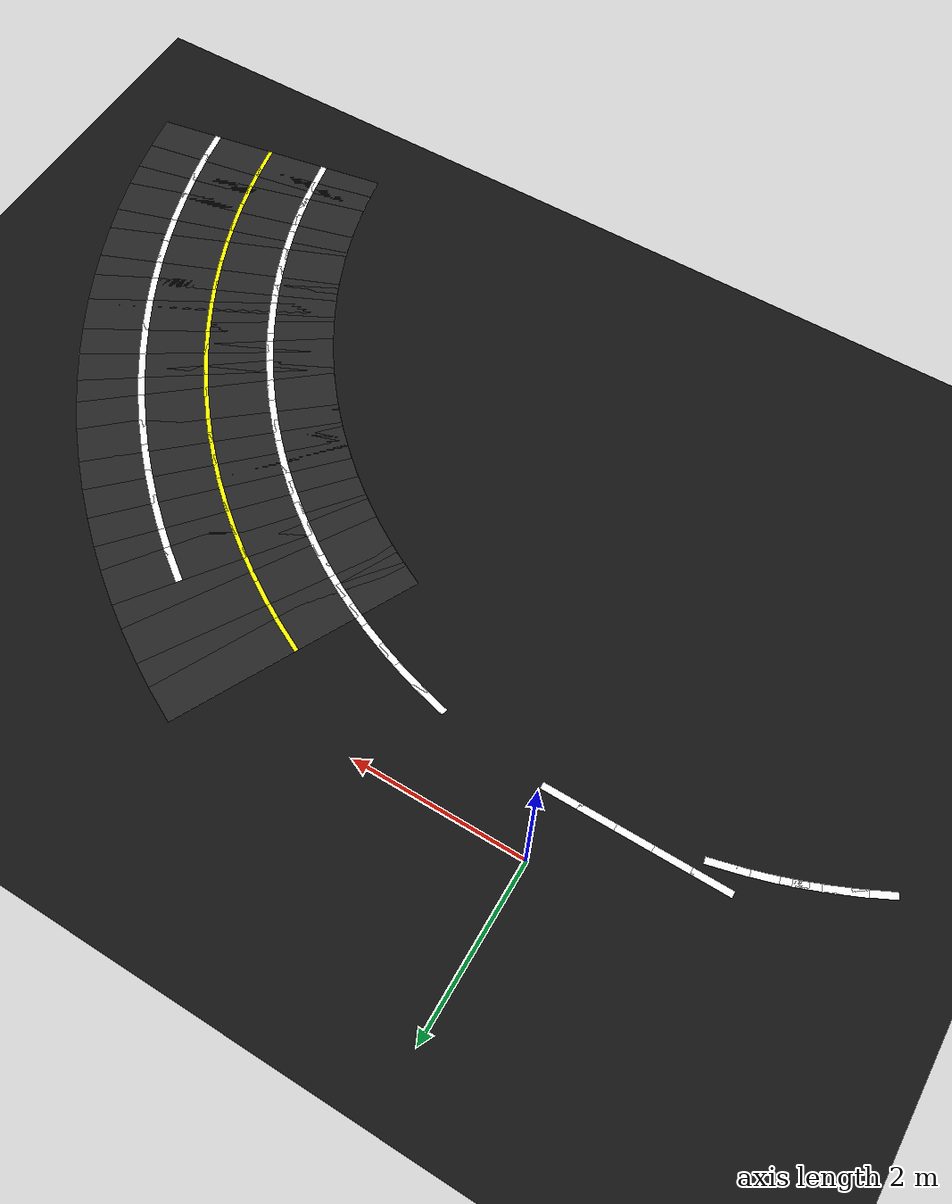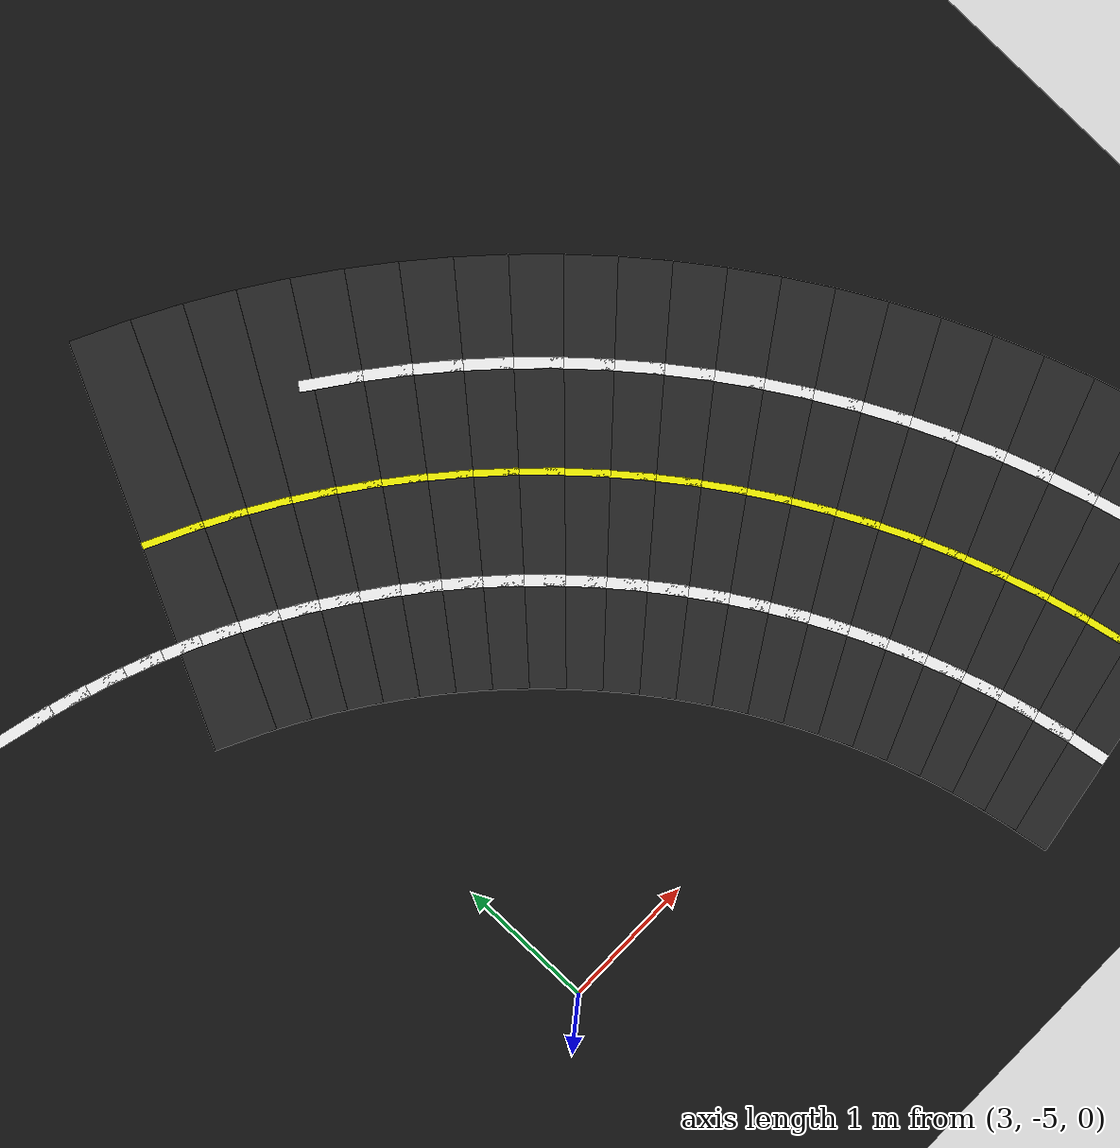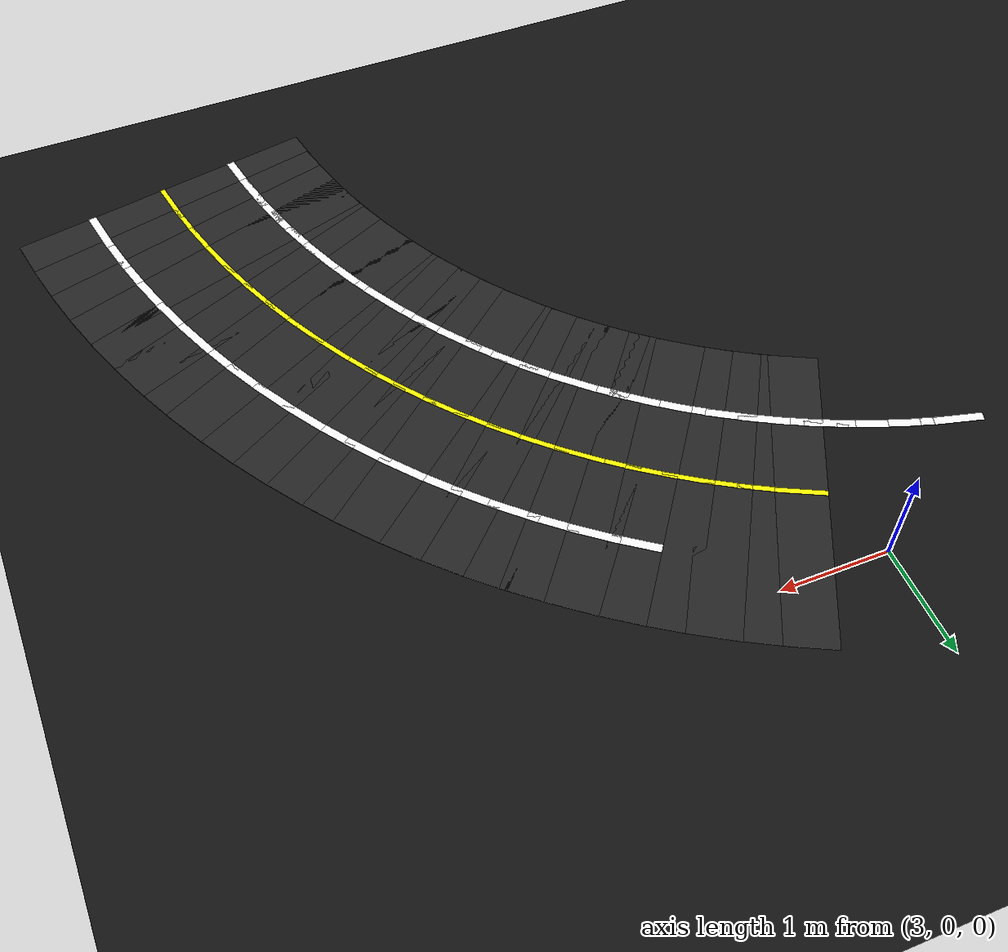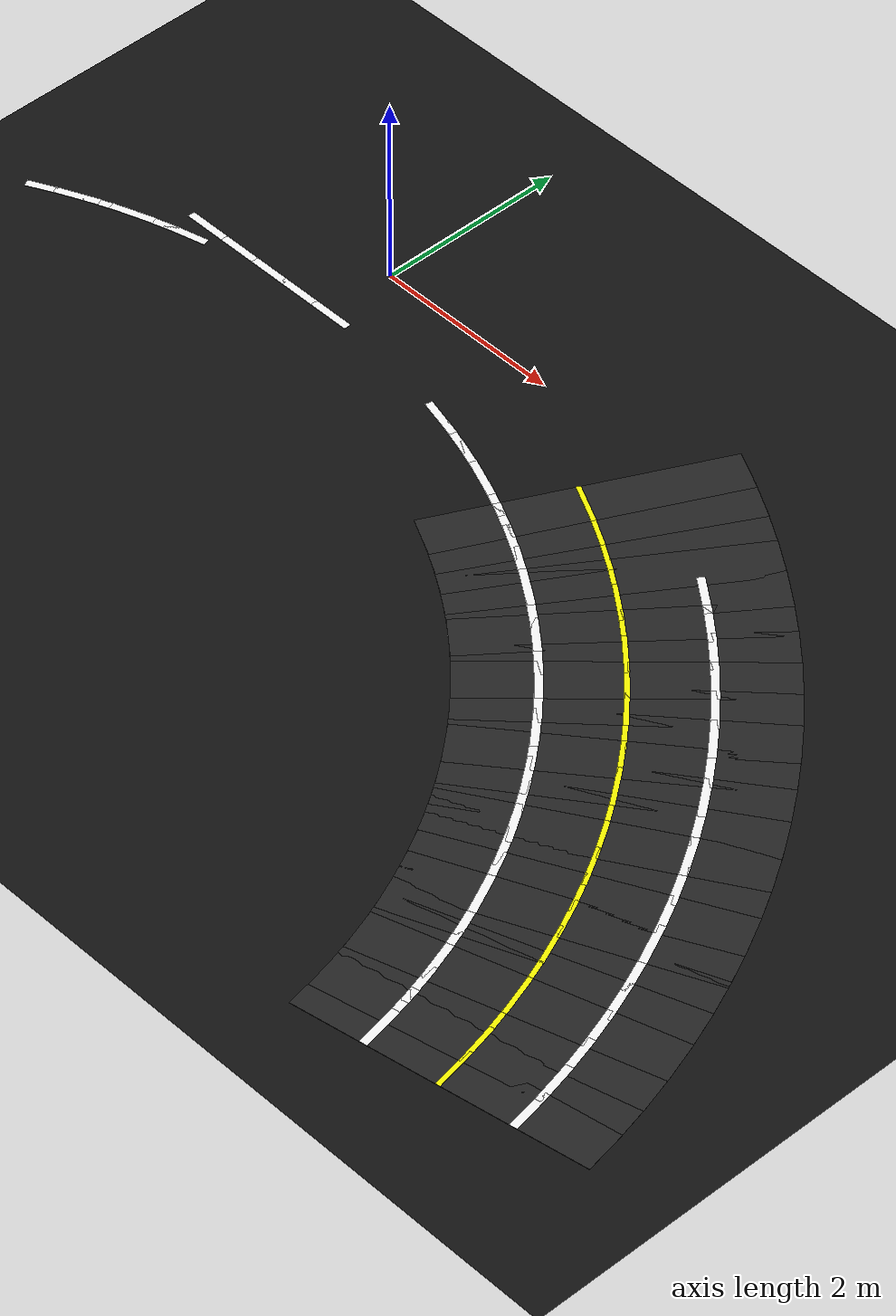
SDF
<sdf version="1.6">
 <world name="figure8_world">
  <model name="ground_plane">
   <static>true</static>
   <link name="link">
    <collision name="collision">
     <geometry><plane><normal>0 0 1</normal><size>100 100</size></plane></geometry>
    </collision>
    <visual name="visual">
     <geometry><plane><normal>0 0 1</normal><size>100 100</size></plane></geometry>
     <material><ambient>0.08 0.08 0.08 1</ambient><diffuse>0.08 0.08 0.08 1</diffuse></material>
    </visual>
   </link>
  </model>
  <model name="seg_00554">
   <static>true</static>
   <pose>1.6897 -0.9649 0.0030 0 0 -0.2530</pose>
   <link name="link">
    <collision name="collision"><geometry><box><size>0.4500 0.0800 0.002</size></box></geometry></collision>
    <visual name="visual">
     <geometry><box><size>0.4500 0.0800 0.002</size></box></geometry>
     <material><ambient>1 1 1 1</ambient><diffuse>1 1 1 1</diffuse></material>
    </visual>
   </link>
  </model>
  <model name="seg_00558">
   <static>true</static>
   <pose>1.9637 -1.0419 0.0030 0 0 -0.2952</pose>
   <link name="link">
    <collision name="collision"><geometry><box><size>0.4500 0.0800 0.002</size></box></geometry></collision>
    <visual name="visual">
     <geometry><box><size>0.4500 0.0800 0.002</size></box></geometry>
     <material><ambient>1 1 1 1</ambient><diffuse>1 1 1 1</diffuse></material>
    </visual>
   </link>
  </model>
  <model name="seg_00562">
   <static>true</static>
   <pose>2.2342 -1.1305 0.0030 0 0 -0.3374</pose>
   <link name="link">
    <collision name="collision"><geometry><box><size>0.4500 0.0800 0.002</size></box></geometry></collision>
    <visual name="visual">
     <geometry><box><size>0.4500 0.0800 0.002</size></box></geometry>
     <material><ambient>1 1 1 1</ambient><diffuse>1 1 1 1</diffuse></material>
    </visual>
   </link>
  </model>
  <model name="seg_00566">
   <static>true</static>
   <pose>2.5007 -1.2303 0.0030 0 0 -0.3795</pose>
   <link name="link">
    <collision name="collision"><geometry><box><size>0.4500 0.0800 0.002</size></box></geometry></collision>
    <visual name="visual">
     <geometry><box><size>0.4500 0.0800 0.002</size></box></geometry>
     <material><ambient>1 1 1 1</ambient><diffuse>1 1 1 1</diffuse></material>
    </visual>
   </link>
  </model>
  <model name="seg_00570">
   <static>true</static>
   <pose>2.7628 -1.3413 0.0030 0 0 -0.4217</pose>
   <link name="link">
    <collision name="collision"><geometry><box><size>0.4500 0.0800 0.002</size></box></geometry></collision>
    <visual name="visual">
     <geometry><box><size>0.4500 0.0800 0.002</size></box></geometry>
     <material><ambient>1 1 1 1</ambient><diffuse>1 1 1 1</diffuse></material>
    </visual>
   </link>
  </model>
  <model name="seg_00572">
   <static>true</static>
   <pose>3.3555 -0.7925 0.0010 0 0 -0.4639</pose>
   <link name="link">
    <collision name="collision"><geometry><box><size>0.4500 3.0000 0.002</size></box></geometry></collision>
    <visual name="visual">
     <geometry><box><size>0.4500 3.0000 0.002</size></box></geometry>
     <material><ambient>0.15 0.15 0.15 1</ambient><diffuse>0.15 0.15 0.15 1</diffuse></material>
    </visual>
   </link>
  </model>
  <model name="seg_00574">
   <static>true</static>
   <pose>3.0200 -1.4633 0.0030 0 0 -0.4639</pose>
   <link name="link">
    <collision name="collision"><geometry><box><size>0.4500 0.0800 0.002</size></box></geometry></collision>
    <visual name="visual">
     <geometry><box><size>0.4500 0.0800 0.002</size></box></geometry>
     <material><ambient>1 1 1 1</ambient><diffuse>1 1 1 1</diffuse></material>
    </visual>
   </link>
  </model>
  <model name="seg_00575">
   <static>true</static>
   <pose>3.3555 -0.7925 0.0030 0 0 -0.4639</pose>
   <link name="link">
    <collision name="collision"><geometry><box><size>0.4500 0.0500 0.002</size></box></geometry></collision>
    <visual name="visual">
     <geometry><box><size>0.4500 0.0500 0.002</size></box></geometry>
     <material><ambient>1 1 0 1</ambient><diffuse>1 1 0 1</diffuse></material>
    </visual>
   </link>
  </model>
  <model name="seg_00576">
   <static>true</static>
   <pose>3.6353 -0.9399 0.0010 0 0 -0.5060</pose>
   <link name="link">
    <collision name="collision"><geometry><box><size>0.4500 3.0000 0.002</size></box></geometry></collision>
    <visual name="visual">
     <geometry><box><size>0.4500 3.0000 0.002</size></box></geometry>
     <material><ambient>0.15 0.15 0.15 1</ambient><diffuse>0.15 0.15 0.15 1</diffuse></material>
    </visual>
   </link>
  </model>
  <model name="seg_00578">
   <static>true</static>
   <pose>3.2718 -1.5959 0.0030 0 0 -0.5060</pose>
   <link name="link">
    <collision name="collision"><geometry><box><size>0.4500 0.0800 0.002</size></box></geometry></collision>
    <visual name="visual">
     <geometry><box><size>0.4500 0.0800 0.002</size></box></geometry>
     <material><ambient>1 1 1 1</ambient><diffuse>1 1 1 1</diffuse></material>
    </visual>
   </link>
  </model>
  <model name="seg_00579">
   <static>true</static>
   <pose>3.6353 -0.9399 0.0030 0 0 -0.5060</pose>
   <link name="link">
    <collision name="collision"><geometry><box><size>0.4500 0.0500 0.002</size></box></geometry></collision>
    <visual name="visual">
     <geometry><box><size>0.4500 0.0500 0.002</size></box></geometry>
     <material><ambient>1 1 0 1</ambient><diffuse>1 1 0 1</diffuse></material>
    </visual>
   </link>
  </model>
  <model name="seg_00580">
   <static>true</static>
   <pose>3.9086 -1.0990 0.0010 0 0 -0.5482</pose>
   <link name="link">
    <collision name="collision"><geometry><box><size>0.4500 3.0000 0.002</size></box></geometry></collision>
    <visual name="visual">
     <geometry><box><size>0.4500 3.0000 0.002</size></box></geometry>
     <material><ambient>0.15 0.15 0.15 1</ambient><diffuse>0.15 0.15 0.15 1</diffuse></material>
    </visual>
   </link>
  </model>
  <model name="seg_00582">
   <static>true</static>
   <pose>3.5178 -1.7391 0.0030 0 0 -0.5482</pose>
   <link name="link">
    <collision name="collision"><geometry><box><size>0.4500 0.0800 0.002</size></box></geometry></collision>
    <visual name="visual">
     <geometry><box><size>0.4500 0.0800 0.002</size></box></geometry>
     <material><ambient>1 1 1 1</ambient><diffuse>1 1 1 1</diffuse></material>
    </visual>
   </link>
  </model>
  <model name="seg_00583">
   <static>true</static>
   <pose>3.9086 -1.0990 0.0030 0 0 -0.5482</pose>
   <link name="link">
    <collision name="collision"><geometry><box><size>0.4500 0.0500 0.002</size></box></geometry></collision>
    <visual name="visual">
     <geometry><box><size>0.4500 0.0500 0.002</size></box></geometry>
     <material><ambient>1 1 0 1</ambient><diffuse>1 1 0 1</diffuse></material>
    </visual>
   </link>
  </model>
  <model name="seg_00584">
   <static>true</static>
   <pose>4.1750 -1.2695 0.0010 0 0 -0.5904</pose>
   <link name="link">
    <collision name="collision"><geometry><box><size>0.4500 3.0000 0.002</size></box></geometry></collision>
    <visual name="visual">
     <geometry><box><size>0.4500 3.0000 0.002</size></box></geometry>
     <material><ambient>0.15 0.15 0.15 1</ambient><diffuse>0.15 0.15 0.15 1</diffuse></material>
    </visual>
   </link>
  </model>
  <model name="seg_00586">
   <static>true</static>
   <pose>3.7575 -1.8925 0.0030 0 0 -0.5904</pose>
   <link name="link">
    <collision name="collision"><geometry><box><size>0.4500 0.0800 0.002</size></box></geometry></collision>
    <visual name="visual">
     <geometry><box><size>0.4500 0.0800 0.002</size></box></geometry>
     <material><ambient>1 1 1 1</ambient><diffuse>1 1 1 1</diffuse></material>
    </visual>
   </link>
  </model>
  <model name="seg_00587">
   <static>true</static>
   <pose>4.1750 -1.2695 0.0030 0 0 -0.5904</pose>
   <link name="link">
    <collision name="collision"><geometry><box><size>0.4500 0.0500 0.002</size></box></geometry></collision>
    <visual name="visual">
     <geometry><box><size>0.4500 0.0500 0.002</size></box></geometry>
     <material><ambient>1 1 0 1</ambient><diffuse>1 1 0 1</diffuse></material>
    </visual>
   </link>
  </model>
  <model name="seg_00588">
   <static>true</static>
   <pose>4.4339 -1.4510 0.0010 0 0 -0.6325</pose>
   <link name="link">
    <collision name="collision"><geometry><box><size>0.4500 3.0000 0.002</size></box></geometry></collision>
    <visual name="visual">
     <geometry><box><size>0.4500 3.0000 0.002</size></box></geometry>
     <material><ambient>0.15 0.15 0.15 1</ambient><diffuse>0.15 0.15 0.15 1</diffuse></material>
    </visual>
   </link>
  </model>
  <model name="seg_00589">
   <static>true</static>
   <pose>4.8773 -0.8461 0.0030 0 0 -0.6325</pose>
   <link name="link">
    <collision name="collision"><geometry><box><size>0.4500 0.0800 0.002</size></box></geometry></collision>
    <visual name="visual">
     <geometry><box><size>0.4500 0.0800 0.002</size></box></geometry>
     <material><ambient>1 1 1 1</ambient><diffuse>1 1 1 1</diffuse></material>
    </visual>
   </link>
  </model>
  <model name="seg_00590">
   <static>true</static>
   <pose>3.9905 -2.0559 0.0030 0 0 -0.6325</pose>
   <link name="link">
    <collision name="collision"><geometry><box><size>0.4500 0.0800 0.002</size></box></geometry></collision>
    <visual name="visual">
     <geometry><box><size>0.4500 0.0800 0.002</size></box></geometry>
     <material><ambient>1 1 1 1</ambient><diffuse>1 1 1 1</diffuse></material>
    </visual>
   </link>
  </model>
  <model name="seg_00591">
   <static>true</static>
   <pose>4.4339 -1.4510 0.0030 0 0 -0.6325</pose>
   <link name="link">
    <collision name="collision"><geometry><box><size>0.4500 0.0500 0.002</size></box></geometry></collision>
    <visual name="visual">
     <geometry><box><size>0.4500 0.0500 0.002</size></box></geometry>
     <material><ambient>1 1 0 1</ambient><diffuse>1 1 0 1</diffuse></material>
    </visual>
   </link>
  </model>
  <model name="seg_00592">
   <static>true</static>
   <pose>4.6850 -1.6433 0.0010 0 0 -0.6747</pose>
   <link name="link">
    <collision name="collision"><geometry><box><size>0.4500 3.0000 0.002</size></box></geometry></collision>
    <visual name="visual">
     <geometry><box><size>0.4500 3.0000 0.002</size></box></geometry>
     <material><ambient>0.15 0.15 0.15 1</ambient><diffuse>0.15 0.15 0.15 1</diffuse></material>
    </visual>
   </link>
  </model>
  <model name="seg_00593">
   <static>true</static>
   <pose>5.1535 -1.0576 0.0030 0 0 -0.6747</pose>
   <link name="link">
    <collision name="collision"><geometry><box><size>0.4500 0.0800 0.002</size></box></geometry></collision>
    <visual name="visual">
     <geometry><box><size>0.4500 0.0800 0.002</size></box></geometry>
     <material><ambient>1 1 1 1</ambient><diffuse>1 1 1 1</diffuse></material>
    </visual>
   </link>
  </model>
  <model name="seg_00594">
   <static>true</static>
   <pose>4.2165 -2.2290 0.0030 0 0 -0.6747</pose>
   <link name="link">
    <collision name="collision"><geometry><box><size>0.4500 0.0800 0.002</size></box></geometry></collision>
    <visual name="visual">
     <geometry><box><size>0.4500 0.0800 0.002</size></box></geometry>
     <material><ambient>1 1 1 1</ambient><diffuse>1 1 1 1</diffuse></material>
    </visual>
   </link>
  </model>
  <model name="seg_00595">
   <static>true</static>
   <pose>4.6850 -1.6433 0.0030 0 0 -0.6747</pose>
   <link name="link">
    <collision name="collision"><geometry><box><size>0.4500 0.0500 0.002</size></box></geometry></collision>
    <visual name="visual">
     <geometry><box><size>0.4500 0.0500 0.002</size></box></geometry>
     <material><ambient>1 1 0 1</ambient><diffuse>1 1 0 1</diffuse></material>
    </visual>
   </link>
  </model>
  <model name="seg_00596">
   <static>true</static>
   <pose>4.9277 -1.8460 0.0010 0 0 -0.7169</pose>
   <link name="link">
    <collision name="collision"><geometry><box><size>0.4500 3.0000 0.002</size></box></geometry></collision>
    <visual name="visual">
     <geometry><box><size>0.4500 3.0000 0.002</size></box></geometry>
     <material><ambient>0.15 0.15 0.15 1</ambient><diffuse>0.15 0.15 0.15 1</diffuse></material>
    </visual>
   </link>
  </model>
  <model name="seg_00597">
   <static>true</static>
   <pose>5.4205 -1.2806 0.0030 0 0 -0.7169</pose>
   <link name="link">
    <collision name="collision"><geometry><box><size>0.4500 0.0800 0.002</size></box></geometry></collision>
    <visual name="visual">
     <geometry><box><size>0.4500 0.0800 0.002</size></box></geometry>
     <material><ambient>1 1 1 1</ambient><diffuse>1 1 1 1</diffuse></material>
    </visual>
   </link>
  </model>
  <model name="seg_00598">
   <static>true</static>
   <pose>4.4350 -2.4114 0.0030 0 0 -0.7169</pose>
   <link name="link">
    <collision name="collision"><geometry><box><size>0.4500 0.0800 0.002</size></box></geometry></collision>
    <visual name="visual">
     <geometry><box><size>0.4500 0.0800 0.002</size></box></geometry>
     <material><ambient>1 1 1 1</ambient><diffuse>1 1 1 1</diffuse></material>
    </visual>
   </link>
  </model>
  <model name="seg_00599">
   <static>true</static>
   <pose>4.9277 -1.8460 0.0030 0 0 -0.7169</pose>
   <link name="link">
    <collision name="collision"><geometry><box><size>0.4500 0.0500 0.002</size></box></geometry></collision>
    <visual name="visual">
     <geometry><box><size>0.4500 0.0500 0.002</size></box></geometry>
     <material><ambient>1 1 0 1</ambient><diffuse>1 1 0 1</diffuse></material>
    </visual>
   </link>
  </model>
  <model name="seg_00600">
   <static>true</static>
   <pose>5.1617 -2.0588 0.0010 0 0 -0.7590</pose>
   <link name="link">
    <collision name="collision"><geometry><box><size>0.4500 3.0000 0.002</size></box></geometry></collision>
    <visual name="visual">
     <geometry><box><size>0.4500 3.0000 0.002</size></box></geometry>
     <material><ambient>0.15 0.15 0.15 1</ambient><diffuse>0.15 0.15 0.15 1</diffuse></material>
    </visual>
   </link>
  </model>
  <model name="seg_00601">
   <static>true</static>
   <pose>5.6779 -1.5147 0.0030 0 0 -0.7590</pose>
   <link name="link">
    <collision name="collision"><geometry><box><size>0.4500 0.0800 0.002</size></box></geometry></collision>
    <visual name="visual">
     <geometry><box><size>0.4500 0.0800 0.002</size></box></geometry>
     <material><ambient>1 1 1 1</ambient><diffuse>1 1 1 1</diffuse></material>
    </visual>
   </link>
  </model>
  <model name="seg_00602">
   <static>true</static>
   <pose>4.6455 -2.6029 0.0030 0 0 -0.7590</pose>
   <link name="link">
    <collision name="collision"><geometry><box><size>0.4500 0.0800 0.002</size></box></geometry></collision>
    <visual name="visual">
     <geometry><box><size>0.4500 0.0800 0.002</size></box></geometry>
     <material><ambient>1 1 1 1</ambient><diffuse>1 1 1 1</diffuse></material>
    </visual>
   </link>
  </model>
  <model name="seg_00603">
   <static>true</static>
   <pose>5.1617 -2.0588 0.0030 0 0 -0.7590</pose>
   <link name="link">
    <collision name="collision"><geometry><box><size>0.4500 0.0500 0.002</size></box></geometry></collision>
    <visual name="visual">
     <geometry><box><size>0.4500 0.0500 0.002</size></box></geometry>
     <material><ambient>1 1 0 1</ambient><diffuse>1 1 0 1</diffuse></material>
    </visual>
   </link>
  </model>
  <model name="seg_00604">
   <static>true</static>
   <pose>5.3865 -2.2812 0.0010 0 0 -0.8012</pose>
   <link name="link">
    <collision name="collision"><geometry><box><size>0.4500 3.0000 0.002</size></box></geometry></collision>
    <visual name="visual">
     <geometry><box><size>0.4500 3.0000 0.002</size></box></geometry>
     <material><ambient>0.15 0.15 0.15 1</ambient><diffuse>0.15 0.15 0.15 1</diffuse></material>
    </visual>
   </link>
  </model>
  <model name="seg_00605">
   <static>true</static>
   <pose>5.9251 -1.7593 0.0030 0 0 -0.8012</pose>
   <link name="link">
    <collision name="collision"><geometry><box><size>0.4500 0.0800 0.002</size></box></geometry></collision>
    <visual name="visual">
     <geometry><box><size>0.4500 0.0800 0.002</size></box></geometry>
     <material><ambient>1 1 1 1</ambient><diffuse>1 1 1 1</diffuse></material>
    </visual>
   </link>
  </model>
  <model name="seg_00606">
   <static>true</static>
   <pose>4.8478 -2.8031 0.0030 0 0 -0.8012</pose>
   <link name="link">
    <collision name="collision"><geometry><box><size>0.4500 0.0800 0.002</size></box></geometry></collision>
    <visual name="visual">
     <geometry><box><size>0.4500 0.0800 0.002</size></box></geometry>
     <material><ambient>1 1 1 1</ambient><diffuse>1 1 1 1</diffuse></material>
    </visual>
   </link>
  </model>
  <model name="seg_00607">
   <static>true</static>
   <pose>5.3865 -2.2812 0.0030 0 0 -0.8012</pose>
   <link name="link">
    <collision name="collision"><geometry><box><size>0.4500 0.0500 0.002</size></box></geometry></collision>
    <visual name="visual">
     <geometry><box><size>0.4500 0.0500 0.002</size></box></geometry>
     <material><ambient>1 1 0 1</ambient><diffuse>1 1 0 1</diffuse></material>
    </visual>
   </link>
  </model>
  <model name="seg_00608">
   <static>true</static>
   <pose>5.6017 -2.5129 0.0010 0 0 -0.8434</pose>
   <link name="link">
    <collision name="collision"><geometry><box><size>0.4500 3.0000 0.002</size></box></geometry></collision>
    <visual name="visual">
     <geometry><box><size>0.4500 3.0000 0.002</size></box></geometry>
     <material><ambient>0.15 0.15 0.15 1</ambient><diffuse>0.15 0.15 0.15 1</diffuse></material>
    </visual>
   </link>
  </model>
  <model name="seg_00609">
   <static>true</static>
   <pose>6.1619 -2.0142 0.0030 0 0 -0.8434</pose>
   <link name="link">
    <collision name="collision"><geometry><box><size>0.4500 0.0800 0.002</size></box></geometry></collision>
    <visual name="visual">
     <geometry><box><size>0.4500 0.0800 0.002</size></box></geometry>
     <material><ambient>1 1 1 1</ambient><diffuse>1 1 1 1</diffuse></material>
    </visual>
   </link>
  </model>
  <model name="seg_00610">
   <static>true</static>
   <pose>5.0415 -3.0116 0.0030 0 0 -0.8434</pose>
   <link name="link">
    <collision name="collision"><geometry><box><size>0.4500 0.0800 0.002</size></box></geometry></collision>
    <visual name="visual">
     <geometry><box><size>0.4500 0.0800 0.002</size></box></geometry>
     <material><ambient>1 1 1 1</ambient><diffuse>1 1 1 1</diffuse></material>
    </visual>
   </link>
  </model>
  <model name="seg_00611">
   <static>true</static>
   <pose>5.6017 -2.5129 0.0030 0 0 -0.8434</pose>
   <link name="link">
    <collision name="collision"><geometry><box><size>0.4500 0.0500 0.002</size></box></geometry></collision>
    <visual name="visual">
     <geometry><box><size>0.4500 0.0500 0.002</size></box></geometry>
     <material><ambient>1 1 0 1</ambient><diffuse>1 1 0 1</diffuse></material>
    </visual>
   </link>
  </model>
  <model name="seg_00612">
   <static>true</static>
   <pose>5.8070 -2.7535 0.0010 0 0 -0.8855</pose>
   <link name="link">
    <collision name="collision"><geometry><box><size>0.4500 3.0000 0.002</size></box></geometry></collision>
    <visual name="visual">
     <geometry><box><size>0.4500 3.0000 0.002</size></box></geometry>
     <material><ambient>0.15 0.15 0.15 1</ambient><diffuse>0.15 0.15 0.15 1</diffuse></material>
    </visual>
   </link>
  </model>
  <model name="seg_00613">
   <static>true</static>
   <pose>6.3877 -2.2789 0.0030 0 0 -0.8855</pose>
   <link name="link">
    <collision name="collision"><geometry><box><size>0.4500 0.0800 0.002</size></box></geometry></collision>
    <visual name="visual">
     <geometry><box><size>0.4500 0.0800 0.002</size></box></geometry>
     <material><ambient>1 1 1 1</ambient><diffuse>1 1 1 1</diffuse></material>
    </visual>
   </link>
  </model>
  <model name="seg_00614">
   <static>true</static>
   <pose>5.2263 -3.2282 0.0030 0 0 -0.8855</pose>
   <link name="link">
    <collision name="collision"><geometry><box><size>0.4500 0.0800 0.002</size></box></geometry></collision>
    <visual name="visual">
     <geometry><box><size>0.4500 0.0800 0.002</size></box></geometry>
     <material><ambient>1 1 1 1</ambient><diffuse>1 1 1 1</diffuse></material>
    </visual>
   </link>
  </model>
  <model name="seg_00615">
   <static>true</static>
   <pose>5.8070 -2.7535 0.0030 0 0 -0.8855</pose>
   <link name="link">
    <collision name="collision"><geometry><box><size>0.4500 0.0500 0.002</size></box></geometry></collision>
    <visual name="visual">
     <geometry><box><size>0.4500 0.0500 0.002</size></box></geometry>
     <material><ambient>1 1 0 1</ambient><diffuse>1 1 0 1</diffuse></material>
    </visual>
   </link>
  </model>
  <model name="seg_00616">
   <static>true</static>
   <pose>6.0019 -3.0025 0.0010 0 0 -0.9277</pose>
   <link name="link">
    <collision name="collision"><geometry><box><size>0.4500 3.0000 0.002</size></box></geometry></collision>
    <visual name="visual">
     <geometry><box><size>0.4500 3.0000 0.002</size></box></geometry>
     <material><ambient>0.15 0.15 0.15 1</ambient><diffuse>0.15 0.15 0.15 1</diffuse></material>
    </visual>
   </link>
  </model>
  <model name="seg_00617">
   <static>true</static>
   <pose>6.6021 -2.5528 0.0030 0 0 -0.9277</pose>
   <link name="link">
    <collision name="collision"><geometry><box><size>0.4500 0.0800 0.002</size></box></geometry></collision>
    <visual name="visual">
     <geometry><box><size>0.4500 0.0800 0.002</size></box></geometry>
     <material><ambient>1 1 1 1</ambient><diffuse>1 1 1 1</diffuse></material>
    </visual>
   </link>
  </model>
  <model name="seg_00618">
   <static>true</static>
   <pose>5.4017 -3.4523 0.0030 0 0 -0.9277</pose>
   <link name="link">
    <collision name="collision"><geometry><box><size>0.4500 0.0800 0.002</size></box></geometry></collision>
    <visual name="visual">
     <geometry><box><size>0.4500 0.0800 0.002</size></box></geometry>
     <material><ambient>1 1 1 1</ambient><diffuse>1 1 1 1</diffuse></material>
    </visual>
   </link>
  </model>
  <model name="seg_00619">
   <static>true</static>
   <pose>6.0019 -3.0025 0.0030 0 0 -0.9277</pose>
   <link name="link">
    <collision name="collision"><geometry><box><size>0.4500 0.0500 0.002</size></box></geometry></collision>
    <visual name="visual">
     <geometry><box><size>0.4500 0.0500 0.002</size></box></geometry>
     <material><ambient>1 1 0 1</ambient><diffuse>1 1 0 1</diffuse></material>
    </visual>
   </link>
  </model>
  <model name="seg_00620">
   <static>true</static>
   <pose>6.1862 -3.2596 0.0010 0 0 -0.9699</pose>
   <link name="link">
    <collision name="collision"><geometry><box><size>0.4500 3.0000 0.002</size></box></geometry></collision>
    <visual name="visual">
     <geometry><box><size>0.4500 3.0000 0.002</size></box></geometry>
     <material><ambient>0.15 0.15 0.15 1</ambient><diffuse>0.15 0.15 0.15 1</diffuse></material>
    </visual>
   </link>
  </model>
  <model name="seg_00621">
   <static>true</static>
   <pose>6.8048 -2.8355 0.0030 0 0 -0.9699</pose>
   <link name="link">
    <collision name="collision"><geometry><box><size>0.4500 0.0800 0.002</size></box></geometry></collision>
    <visual name="visual">
     <geometry><box><size>0.4500 0.0800 0.002</size></box></geometry>
     <material><ambient>1 1 1 1</ambient><diffuse>1 1 1 1</diffuse></material>
    </visual>
   </link>
  </model>
  <model name="seg_00622">
   <static>true</static>
   <pose>5.5675 -3.6836 0.0030 0 0 -0.9699</pose>
   <link name="link">
    <collision name="collision"><geometry><box><size>0.4500 0.0800 0.002</size></box></geometry></collision>
    <visual name="visual">
     <geometry><box><size>0.4500 0.0800 0.002</size></box></geometry>
     <material><ambient>1 1 1 1</ambient><diffuse>1 1 1 1</diffuse></material>
    </visual>
   </link>
  </model>
  <model name="seg_00623">
   <static>true</static>
   <pose>6.1862 -3.2596 0.0030 0 0 -0.9699</pose>
   <link name="link">
    <collision name="collision"><geometry><box><size>0.4500 0.0500 0.002</size></box></geometry></collision>
    <visual name="visual">
     <geometry><box><size>0.4500 0.0500 0.002</size></box></geometry>
     <material><ambient>1 1 0 1</ambient><diffuse>1 1 0 1</diffuse></material>
    </visual>
   </link>
  </model>
  <model name="seg_00624">
   <static>true</static>
   <pose>6.3594 -3.5241 0.0010 0 0 -1.0121</pose>
   <link name="link">
    <collision name="collision"><geometry><box><size>0.4500 3.0000 0.002</size></box></geometry></collision>
    <visual name="visual">
     <geometry><box><size>0.4500 3.0000 0.002</size></box></geometry>
     <material><ambient>0.15 0.15 0.15 1</ambient><diffuse>0.15 0.15 0.15 1</diffuse></material>
    </visual>
   </link>
  </model>
  <model name="seg_00625">
   <static>true</static>
   <pose>6.9954 -3.1265 0.0030 0 0 -1.0121</pose>
   <link name="link">
    <collision name="collision"><geometry><box><size>0.4500 0.0800 0.002</size></box></geometry></collision>
    <visual name="visual">
     <geometry><box><size>0.4500 0.0800 0.002</size></box></geometry>
     <material><ambient>1 1 1 1</ambient><diffuse>1 1 1 1</diffuse></material>
    </visual>
   </link>
  </model>
  <model name="seg_00626">
   <static>true</static>
   <pose>5.7235 -3.9217 0.0030 0 0 -1.0121</pose>
   <link name="link">
    <collision name="collision"><geometry><box><size>0.4500 0.0800 0.002</size></box></geometry></collision>
    <visual name="visual">
     <geometry><box><size>0.4500 0.0800 0.002</size></box></geometry>
     <material><ambient>1 1 1 1</ambient><diffuse>1 1 1 1</diffuse></material>
    </visual>
   </link>
  </model>
  <model name="seg_00627">
   <static>true</static>
   <pose>6.3594 -3.5241 0.0030 0 0 -1.0121</pose>
   <link name="link">
    <collision name="collision"><geometry><box><size>0.4500 0.0500 0.002</size></box></geometry></collision>
    <visual name="visual">
     <geometry><box><size>0.4500 0.0500 0.002</size></box></geometry>
     <material><ambient>1 1 0 1</ambient><diffuse>1 1 0 1</diffuse></material>
    </visual>
   </link>
  </model>
  <model name="seg_00628">
   <static>true</static>
   <pose>6.5214 -3.7957 0.0010 0 0 -1.0542</pose>
   <link name="link">
    <collision name="collision"><geometry><box><size>0.4500 3.0000 0.002</size></box></geometry></collision>
    <visual name="visual">
     <geometry><box><size>0.4500 3.0000 0.002</size></box></geometry>
     <material><ambient>0.15 0.15 0.15 1</ambient><diffuse>0.15 0.15 0.15 1</diffuse></material>
    </visual>
   </link>
  </model>
  <model name="seg_00629">
   <static>true</static>
   <pose>7.1735 -3.4253 0.0030 0 0 -1.0542</pose>
   <link name="link">
    <collision name="collision"><geometry><box><size>0.4500 0.0800 0.002</size></box></geometry></collision>
    <visual name="visual">
     <geometry><box><size>0.4500 0.0800 0.002</size></box></geometry>
     <material><ambient>1 1 1 1</ambient><diffuse>1 1 1 1</diffuse></material>
    </visual>
   </link>
  </model>
  <model name="seg_00630">
   <static>true</static>
   <pose>5.8692 -4.1662 0.0030 0 0 -1.0542</pose>
   <link name="link">
    <collision name="collision"><geometry><box><size>0.4500 0.0800 0.002</size></box></geometry></collision>
    <visual name="visual">
     <geometry><box><size>0.4500 0.0800 0.002</size></box></geometry>
     <material><ambient>1 1 1 1</ambient><diffuse>1 1 1 1</diffuse></material>
    </visual>
   </link>
  </model>
  <model name="seg_00631">
   <static>true</static>
   <pose>6.5214 -3.7957 0.0030 0 0 -1.0542</pose>
   <link name="link">
    <collision name="collision"><geometry><box><size>0.4500 0.0500 0.002</size></box></geometry></collision>
    <visual name="visual">
     <geometry><box><size>0.4500 0.0500 0.002</size></box></geometry>
     <material><ambient>1 1 0 1</ambient><diffuse>1 1 0 1</diffuse></material>
    </visual>
   </link>
  </model>
  <model name="seg_00632">
   <static>true</static>
   <pose>6.6717 -4.0740 0.0010 0 0 -1.0964</pose>
   <link name="link">
    <collision name="collision"><geometry><box><size>0.4500 3.0000 0.002</size></box></geometry></collision>
    <visual name="visual">
     <geometry><box><size>0.4500 3.0000 0.002</size></box></geometry>
     <material><ambient>0.15 0.15 0.15 1</ambient><diffuse>0.15 0.15 0.15 1</diffuse></material>
    </visual>
   </link>
  </model>
  <model name="seg_00633">
   <static>true</static>
   <pose>7.3389 -3.7313 0.0030 0 0 -1.0964</pose>
   <link name="link">
    <collision name="collision"><geometry><box><size>0.4500 0.0800 0.002</size></box></geometry></collision>
    <visual name="visual">
     <geometry><box><size>0.4500 0.0800 0.002</size></box></geometry>
     <material><ambient>1 1 1 1</ambient><diffuse>1 1 1 1</diffuse></material>
    </visual>
   </link>
  </model>
  <model name="seg_00634">
   <static>true</static>
   <pose>6.0046 -4.4166 0.0030 0 0 -1.0964</pose>
   <link name="link">
    <collision name="collision"><geometry><box><size>0.4500 0.0800 0.002</size></box></geometry></collision>
    <visual name="visual">
     <geometry><box><size>0.4500 0.0800 0.002</size></box></geometry>
     <material><ambient>1 1 1 1</ambient><diffuse>1 1 1 1</diffuse></material>
    </visual>
   </link>
  </model>
  <model name="seg_00635">
   <static>true</static>
   <pose>6.6717 -4.0740 0.0030 0 0 -1.0964</pose>
   <link name="link">
    <collision name="collision"><geometry><box><size>0.4500 0.0500 0.002</size></box></geometry></collision>
    <visual name="visual">
     <geometry><box><size>0.4500 0.0500 0.002</size></box></geometry>
     <material><ambient>1 1 0 1</ambient><diffuse>1 1 0 1</diffuse></material>
    </visual>
   </link>
  </model>
  <model name="seg_00636">
   <static>true</static>
   <pose>6.8102 -4.3583 0.0010 0 0 -1.1386</pose>
   <link name="link">
    <collision name="collision"><geometry><box><size>0.4500 3.0000 0.002</size></box></geometry></collision>
    <visual name="visual">
     <geometry><box><size>0.4500 3.0000 0.002</size></box></geometry>
     <material><ambient>0.15 0.15 0.15 1</ambient><diffuse>0.15 0.15 0.15 1</diffuse></material>
    </visual>
   </link>
  </model>
  <model name="seg_00637">
   <static>true</static>
   <pose>7.4913 -4.0441 0.0030 0 0 -1.1386</pose>
   <link name="link">
    <collision name="collision"><geometry><box><size>0.4500 0.0800 0.002</size></box></geometry></collision>
    <visual name="visual">
     <geometry><box><size>0.4500 0.0800 0.002</size></box></geometry>
     <material><ambient>1 1 1 1</ambient><diffuse>1 1 1 1</diffuse></material>
    </visual>
   </link>
  </model>
  <model name="seg_00638">
   <static>true</static>
   <pose>6.1292 -4.6724 0.0030 0 0 -1.1386</pose>
   <link name="link">
    <collision name="collision"><geometry><box><size>0.4500 0.0800 0.002</size></box></geometry></collision>
    <visual name="visual">
     <geometry><box><size>0.4500 0.0800 0.002</size></box></geometry>
     <material><ambient>1 1 1 1</ambient><diffuse>1 1 1 1</diffuse></material>
    </visual>
   </link>
  </model>
  <model name="seg_00639">
   <static>true</static>
   <pose>6.8102 -4.3583 0.0030 0 0 -1.1386</pose>
   <link name="link">
    <collision name="collision"><geometry><box><size>0.4500 0.0500 0.002</size></box></geometry></collision>
    <visual name="visual">
     <geometry><box><size>0.4500 0.0500 0.002</size></box></geometry>
     <material><ambient>1 1 0 1</ambient><diffuse>1 1 0 1</diffuse></material>
    </visual>
   </link>
  </model>
  <model name="seg_00640">
   <static>true</static>
   <pose>6.9366 -4.6481 0.0010 0 0 -1.1807</pose>
   <link name="link">
    <collision name="collision"><geometry><box><size>0.4500 3.0000 0.002</size></box></geometry></collision>
    <visual name="visual">
     <geometry><box><size>0.4500 3.0000 0.002</size></box></geometry>
     <material><ambient>0.15 0.15 0.15 1</ambient><diffuse>0.15 0.15 0.15 1</diffuse></material>
    </visual>
   </link>
  </model>
  <model name="seg_00641">
   <static>true</static>
   <pose>7.6303 -4.3630 0.0030 0 0 -1.1807</pose>
   <link name="link">
    <collision name="collision"><geometry><box><size>0.4500 0.0800 0.002</size></box></geometry></collision>
    <visual name="visual">
     <geometry><box><size>0.4500 0.0800 0.002</size></box></geometry>
     <material><ambient>1 1 1 1</ambient><diffuse>1 1 1 1</diffuse></material>
    </visual>
   </link>
  </model>
  <model name="seg_00642">
   <static>true</static>
   <pose>6.2430 -4.9333 0.0030 0 0 -1.1807</pose>
   <link name="link">
    <collision name="collision"><geometry><box><size>0.4500 0.0800 0.002</size></box></geometry></collision>
    <visual name="visual">
     <geometry><box><size>0.4500 0.0800 0.002</size></box></geometry>
     <material><ambient>1 1 1 1</ambient><diffuse>1 1 1 1</diffuse></material>
    </visual>
   </link>
  </model>
  <model name="seg_00643">
   <static>true</static>
   <pose>6.9366 -4.6481 0.0030 0 0 -1.1807</pose>
   <link name="link">
    <collision name="collision"><geometry><box><size>0.4500 0.0500 0.002</size></box></geometry></collision>
    <visual name="visual">
     <geometry><box><size>0.4500 0.0500 0.002</size></box></geometry>
     <material><ambient>1 1 0 1</ambient><diffuse>1 1 0 1</diffuse></material>
    </visual>
   </link>
  </model>
  <model name="seg_00644">
   <static>true</static>
   <pose>7.0507 -4.9431 0.0010 0 0 -1.2229</pose>
   <link name="link">
    <collision name="collision"><geometry><box><size>0.4500 3.0000 0.002</size></box></geometry></collision>
    <visual name="visual">
     <geometry><box><size>0.4500 3.0000 0.002</size></box></geometry>
     <material><ambient>0.15 0.15 0.15 1</ambient><diffuse>0.15 0.15 0.15 1</diffuse></material>
    </visual>
   </link>
  </model>
  <model name="seg_00645">
   <static>true</static>
   <pose>7.7558 -4.6874 0.0030 0 0 -1.2229</pose>
   <link name="link">
    <collision name="collision"><geometry><box><size>0.4500 0.0800 0.002</size></box></geometry></collision>
    <visual name="visual">
     <geometry><box><size>0.4500 0.0800 0.002</size></box></geometry>
     <material><ambient>1 1 1 1</ambient><diffuse>1 1 1 1</diffuse></material>
    </visual>
   </link>
  </model>
  <model name="seg_00646">
   <static>true</static>
   <pose>6.3456 -5.1988 0.0030 0 0 -1.2229</pose>
   <link name="link">
    <collision name="collision"><geometry><box><size>0.4500 0.0800 0.002</size></box></geometry></collision>
    <visual name="visual">
     <geometry><box><size>0.4500 0.0800 0.002</size></box></geometry>
     <material><ambient>1 1 1 1</ambient><diffuse>1 1 1 1</diffuse></material>
    </visual>
   </link>
  </model>
  <model name="seg_00647">
   <static>true</static>
   <pose>7.0507 -4.9431 0.0030 0 0 -1.2229</pose>
   <link name="link">
    <collision name="collision"><geometry><box><size>0.4500 0.0500 0.002</size></box></geometry></collision>
    <visual name="visual">
     <geometry><box><size>0.4500 0.0500 0.002</size></box></geometry>
     <material><ambient>1 1 0 1</ambient><diffuse>1 1 0 1</diffuse></material>
    </visual>
   </link>
  </model>
  <model name="seg_00648">
   <static>true</static>
   <pose>7.1522 -5.2426 0.0010 0 0 -1.2651</pose>
   <link name="link">
    <collision name="collision"><geometry><box><size>0.4500 3.0000 0.002</size></box></geometry></collision>
    <visual name="visual">
     <geometry><box><size>0.4500 3.0000 0.002</size></box></geometry>
     <material><ambient>0.15 0.15 0.15 1</ambient><diffuse>0.15 0.15 0.15 1</diffuse></material>
    </visual>
   </link>
  </model>
  <model name="seg_00649">
   <static>true</static>
   <pose>7.8674 -5.0169 0.0030 0 0 -1.2651</pose>
   <link name="link">
    <collision name="collision"><geometry><box><size>0.4500 0.0800 0.002</size></box></geometry></collision>
    <visual name="visual">
     <geometry><box><size>0.4500 0.0800 0.002</size></box></geometry>
     <material><ambient>1 1 1 1</ambient><diffuse>1 1 1 1</diffuse></material>
    </visual>
   </link>
  </model>
  <model name="seg_00650">
   <static>true</static>
   <pose>6.4370 -5.4684 0.0030 0 0 -1.2651</pose>
   <link name="link">
    <collision name="collision"><geometry><box><size>0.4500 0.0800 0.002</size></box></geometry></collision>
    <visual name="visual">
     <geometry><box><size>0.4500 0.0800 0.002</size></box></geometry>
     <material><ambient>1 1 1 1</ambient><diffuse>1 1 1 1</diffuse></material>
    </visual>
   </link>
  </model>
  <model name="seg_00651">
   <static>true</static>
   <pose>7.1522 -5.2426 0.0030 0 0 -1.2651</pose>
   <link name="link">
    <collision name="collision"><geometry><box><size>0.4500 0.0500 0.002</size></box></geometry></collision>
    <visual name="visual">
     <geometry><box><size>0.4500 0.0500 0.002</size></box></geometry>
     <material><ambient>1 1 0 1</ambient><diffuse>1 1 0 1</diffuse></material>
    </visual>
   </link>
  </model>
  <model name="seg_00652">
   <static>true</static>
   <pose>7.2410 -5.5461 0.0010 0 0 -1.3072</pose>
   <link name="link">
    <collision name="collision"><geometry><box><size>0.4500 3.0000 0.002</size></box></geometry></collision>
    <visual name="visual">
     <geometry><box><size>0.4500 3.0000 0.002</size></box></geometry>
     <material><ambient>0.15 0.15 0.15 1</ambient><diffuse>0.15 0.15 0.15 1</diffuse></material>
    </visual>
   </link>
  </model>
  <model name="seg_00653">
   <static>true</static>
   <pose>7.9651 -5.3507 0.0030 0 0 -1.3072</pose>
   <link name="link">
    <collision name="collision"><geometry><box><size>0.4500 0.0800 0.002</size></box></geometry></collision>
    <visual name="visual">
     <geometry><box><size>0.4500 0.0800 0.002</size></box></geometry>
     <material><ambient>1 1 1 1</ambient><diffuse>1 1 1 1</diffuse></material>
    </visual>
   </link>
  </model>
  <model name="seg_00654">
   <static>true</static>
   <pose>6.5169 -5.7415 0.0030 0 0 -1.3072</pose>
   <link name="link">
    <collision name="collision"><geometry><box><size>0.4500 0.0800 0.002</size></box></geometry></collision>
    <visual name="visual">
     <geometry><box><size>0.4500 0.0800 0.002</size></box></geometry>
     <material><ambient>1 1 1 1</ambient><diffuse>1 1 1 1</diffuse></material>
    </visual>
   </link>
  </model>
  <model name="seg_00655">
   <static>true</static>
   <pose>7.2410 -5.5461 0.0030 0 0 -1.3072</pose>
   <link name="link">
    <collision name="collision"><geometry><box><size>0.4500 0.0500 0.002</size></box></geometry></collision>
    <visual name="visual">
     <geometry><box><size>0.4500 0.0500 0.002</size></box></geometry>
     <material><ambient>1 1 0 1</ambient><diffuse>1 1 0 1</diffuse></material>
    </visual>
   </link>
  </model>
  <model name="seg_00656">
   <static>true</static>
   <pose>7.3170 -5.8531 0.0010 0 0 -1.3494</pose>
   <link name="link">
    <collision name="collision"><geometry><box><size>0.4500 3.0000 0.002</size></box></geometry></collision>
    <visual name="visual">
     <geometry><box><size>0.4500 3.0000 0.002</size></box></geometry>
     <material><ambient>0.15 0.15 0.15 1</ambient><diffuse>0.15 0.15 0.15 1</diffuse></material>
    </visual>
   </link>
  </model>
  <model name="seg_00657">
   <static>true</static>
   <pose>8.0486 -5.6884 0.0030 0 0 -1.3494</pose>
   <link name="link">
    <collision name="collision"><geometry><box><size>0.4500 0.0800 0.002</size></box></geometry></collision>
    <visual name="visual">
     <geometry><box><size>0.4500 0.0800 0.002</size></box></geometry>
     <material><ambient>1 1 1 1</ambient><diffuse>1 1 1 1</diffuse></material>
    </visual>
   </link>
  </model>
  <model name="seg_00658">
   <static>true</static>
   <pose>6.5853 -6.0178 0.0030 0 0 -1.3494</pose>
   <link name="link">
    <collision name="collision"><geometry><box><size>0.4500 0.0800 0.002</size></box></geometry></collision>
    <visual name="visual">
     <geometry><box><size>0.4500 0.0800 0.002</size></box></geometry>
     <material><ambient>1 1 1 1</ambient><diffuse>1 1 1 1</diffuse></material>
    </visual>
   </link>
  </model>
  <model name="seg_00659">
   <static>true</static>
   <pose>7.3170 -5.8531 0.0030 0 0 -1.3494</pose>
   <link name="link">
    <collision name="collision"><geometry><box><size>0.4500 0.0500 0.002</size></box></geometry></collision>
    <visual name="visual">
     <geometry><box><size>0.4500 0.0500 0.002</size></box></geometry>
     <material><ambient>1 1 0 1</ambient><diffuse>1 1 0 1</diffuse></material>
    </visual>
   </link>
  </model>
  <model name="seg_00660">
   <static>true</static>
   <pose>7.3799 -6.1630 0.0010 0 0 -1.3916</pose>
   <link name="link">
    <collision name="collision"><geometry><box><size>0.4500 3.0000 0.002</size></box></geometry></collision>
    <visual name="visual">
     <geometry><box><size>0.4500 3.0000 0.002</size></box></geometry>
     <material><ambient>0.15 0.15 0.15 1</ambient><diffuse>0.15 0.15 0.15 1</diffuse></material>
    </visual>
   </link>
  </model>
  <model name="seg_00661">
   <static>true</static>
   <pose>8.1179 -6.0294 0.0030 0 0 -1.3916</pose>
   <link name="link">
    <collision name="collision"><geometry><box><size>0.4500 0.0800 0.002</size></box></geometry></collision>
    <visual name="visual">
     <geometry><box><size>0.4500 0.0800 0.002</size></box></geometry>
     <material><ambient>1 1 1 1</ambient><diffuse>1 1 1 1</diffuse></material>
    </visual>
   </link>
  </model>
  <model name="seg_00662">
   <static>true</static>
   <pose>6.6419 -6.2967 0.0030 0 0 -1.3916</pose>
   <link name="link">
    <collision name="collision"><geometry><box><size>0.4500 0.0800 0.002</size></box></geometry></collision>
    <visual name="visual">
     <geometry><box><size>0.4500 0.0800 0.002</size></box></geometry>
     <material><ambient>1 1 1 1</ambient><diffuse>1 1 1 1</diffuse></material>
    </visual>
   </link>
  </model>
  <model name="seg_00663">
   <static>true</static>
   <pose>7.3799 -6.1630 0.0030 0 0 -1.3916</pose>
   <link name="link">
    <collision name="collision"><geometry><box><size>0.4500 0.0500 0.002</size></box></geometry></collision>
    <visual name="visual">
     <geometry><box><size>0.4500 0.0500 0.002</size></box></geometry>
     <material><ambient>1 1 0 1</ambient><diffuse>1 1 0 1</diffuse></material>
    </visual>
   </link>
  </model>
  <model name="seg_01082">
   <static>true</static>
   <pose>-3.0200 -1.4633 0.0030 0 0 0.4639</pose>
   <link name="link">
    <collision name="collision"><geometry><box><size>0.4500 0.0800 0.002</size></box></geometry></collision>
    <visual name="visual">
     <geometry><box><size>0.4500 0.0800 0.002</size></box></geometry>
     <material><ambient>1 1 1 1</ambient><diffuse>1 1 1 1</diffuse></material>
    </visual>
   </link>
  </model>
  <model name="seg_01086">
   <static>true</static>
   <pose>-2.7628 -1.3413 0.0030 0 0 0.4217</pose>
   <link name="link">
    <collision name="collision"><geometry><box><size>0.4500 0.0800 0.002</size></box></geometry></collision>
    <visual name="visual">
     <geometry><box><size>0.4500 0.0800 0.002</size></box></geometry>
     <material><ambient>1 1 1 1</ambient><diffuse>1 1 1 1</diffuse></material>
    </visual>
   </link>
  </model>
  <model name="seg_01090">
   <static>true</static>
   <pose>-2.5007 -1.2303 0.0030 0 0 0.3795</pose>
   <link name="link">
    <collision name="collision"><geometry><box><size>0.4500 0.0800 0.002</size></box></geometry></collision>
    <visual name="visual">
     <geometry><box><size>0.4500 0.0800 0.002</size></box></geometry>
     <material><ambient>1 1 1 1</ambient><diffuse>1 1 1 1</diffuse></material>
    </visual>
   </link>
  </model>
  <model name="seg_01094">
   <static>true</static>
   <pose>-2.2342 -1.1305 0.0030 0 0 0.3374</pose>
   <link name="link">
    <collision name="collision"><geometry><box><size>0.4500 0.0800 0.002</size></box></geometry></collision>
    <visual name="visual">
     <geometry><box><size>0.4500 0.0800 0.002</size></box></geometry>
     <material><ambient>1 1 1 1</ambient><diffuse>1 1 1 1</diffuse></material>
    </visual>
   </link>
  </model>
  <model name="seg_01098">
   <static>true</static>
   <pose>-1.9637 -1.0419 0.0030 0 0 0.2952</pose>
   <link name="link">
    <collision name="collision"><geometry><box><size>0.4500 0.0800 0.002</size></box></geometry></collision>
    <visual name="visual">
     <geometry><box><size>0.4500 0.0800 0.002</size></box></geometry>
     <material><ambient>1 1 1 1</ambient><diffuse>1 1 1 1</diffuse></material>
    </visual>
   </link>
  </model>
  <model name="seg_01102">
   <static>true</static>
   <pose>-1.6897 -0.9649 0.0030 0 0 0.2530</pose>
   <link name="link">
    <collision name="collision"><geometry><box><size>0.4500 0.0800 0.002</size></box></geometry></collision>
    <visual name="visual">
     <geometry><box><size>0.4500 0.0800 0.002</size></box></geometry>
     <material><ambient>1 1 1 1</ambient><diffuse>1 1 1 1</diffuse></material>
    </visual>
   </link>
  </model>
  <model name="seg_01105">
   <static>true</static>
   <pose>-1.6367 -0.7500 0.0030 0 0 0.0000</pose>
   <link name="link">
    <collision name="collision"><geometry><box><size>0.4500 0.0800 0.002</size></box></geometry></collision>
    <visual name="visual">
     <geometry><box><size>0.4500 0.0800 0.002</size></box></geometry>
     <material><ambient>1 1 1 1</ambient><diffuse>1 1 1 1</diffuse></material>
    </visual>
   </link>
  </model>
  <model name="seg_01109">
   <static>true</static>
   <pose>-1.2227 -0.7500 0.0030 0 0 0.0000</pose>
   <link name="link">
    <collision name="collision"><geometry><box><size>0.4500 0.0800 0.002</size></box></geometry></collision>
    <visual name="visual">
     <geometry><box><size>0.4500 0.0800 0.002</size></box></geometry>
     <material><ambient>1 1 1 1</ambient><diffuse>1 1 1 1</diffuse></material>
    </visual>
   </link>
  </model>
  <model name="seg_01113">
   <static>true</static>
   <pose>-0.8087 -0.7500 0.0030 0 0 0.0000</pose>
   <link name="link">
    <collision name="collision"><geometry><box><size>0.4500 0.0800 0.002</size></box></geometry></collision>
    <visual name="visual">
     <geometry><box><size>0.4500 0.0800 0.002</size></box></geometry>
     <material><ambient>1 1 1 1</ambient><diffuse>1 1 1 1</diffuse></material>
    </visual>
   </link>
  </model>
  <model name="seg_01117">
   <static>true</static>
   <pose>-0.3947 -0.7500 0.0030 0 0 0.0000</pose>
   <link name="link">
    <collision name="collision"><geometry><box><size>0.4500 0.0800 0.002</size></box></geometry></collision>
    <visual name="visual">
     <geometry><box><size>0.4500 0.0800 0.002</size></box></geometry>
     <material><ambient>1 1 1 1</ambient><diffuse>1 1 1 1</diffuse></material>
    </visual>
   </link>
  </model>
  <model name="seg_01121">
   <static>true</static>
   <pose>0.0193 -0.7500 0.0030 0 0 0.0000</pose>
   <link name="link">
    <collision name="collision"><geometry><box><size>0.4500 0.0800 0.002</size></box></geometry></collision>
    <visual name="visual">
     <geometry><box><size>0.4500 0.0800 0.002</size></box></geometry>
     <material><ambient>1 1 1 1</ambient><diffuse>1 1 1 1</diffuse></material>
    </visual>
   </link>
  </model>
 </world>
</sdf>
